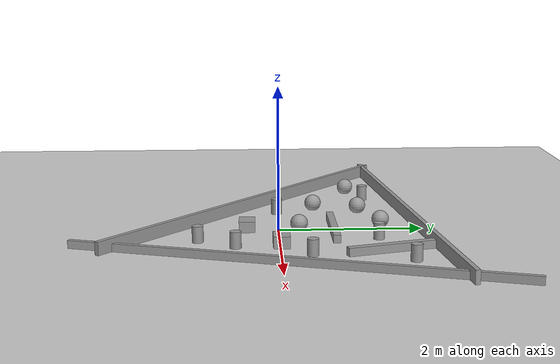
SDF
<sdf version="1.6">
 <world name="default">
  <light name="sun" type="directional">
   <pose>0 0 10 0 -0 0</pose>
   <diffuse>0.8 0.8 0.8 1</diffuse>
   <specular>0.2 0.2 0.2 1</specular>
   <attenuation>
    <range>1000</range>
    <constant>0.9</constant>
    <linear>0.01</linear>
    <quadratic>0.001</quadratic>
   </attenuation>
   <direction>-0.5 0.1 -0.9</direction>
  </light>
  <model name="ground_plane">
   <static>1</static>
   <link name="link">
    <collision name="collision">
     <geometry><plane><normal>0 0 1</normal><size>100 100</size></plane></geometry>
     <surface>
      <contact><collide_bitmask>65535</collide_bitmask></contact>
      <friction><ode><mu>100</mu><mu2>50</mu2></ode></friction>
     </surface>
    </collision>
    <visual name="visual">
     <cast_shadows>0</cast_shadows>
     <geometry><plane><normal>0 0 1</normal><size>100 100</size></plane></geometry>
     <material>
      <script><uri>file://media/materials/scripts/gazebo.material</uri><name>Gazebo/Grey</name></script>
     </material>
    </visual>
   </link>
  </model>
  <gravity>0 0 -9.8</gravity>
  <magnetic_field>6e-06 2.3e-05 -4.2e-05</magnetic_field>
  <atmosphere type="adiabatic"/>
  <physics name="default_physics" default="0" type="ode">
   <max_step_size>0.001</max_step_size>
   <real_time_factor>1</real_time_factor>
   <real_time_update_rate>1000</real_time_update_rate>
  </physics>
  <scene><ambient>0.4 0.4 0.4 1</ambient><background>0.7 0.7 0.7 1</background><shadows>1</shadows></scene>
  <audio><device>default</device></audio>
  <spherical_coordinates>
   <surface_model>EARTH_WGS84</surface_model>
   <latitude_deg>0</latitude_deg>
   <longitude_deg>0</longitude_deg>
   <elevation>0</elevation>
   <heading_deg>0</heading_deg>
  </spherical_coordinates>
  <model name="wall">
   <link name="link">
    <inertial>
     <mass>1</mass>
     <inertia>
      <ixx>0.166667</ixx>
      <ixy>0</ixy>
      <ixz>0</ixz>
      <iyy>0.166667</iyy>
      <iyz>0</iyz>
      <izz>0.166667</izz>
     </inertia>
    </inertial>
    <visual name="visual">
     <geometry><box><size>6.06185 0.064282 0.203764</size></box></geometry>
     <material>
      <script><name>Gazebo/Grey</name><uri>file://media/materials/scripts/gazebo.material</uri></script>
     </material>
    </visual>
    <collision name="collision">
     <geometry><box><size>6.06185 0.064282 0.203764</size></box></geometry>
     <surface>
      <friction>
       <ode><mu>1</mu><mu2>1</mu2><fdir1>0 0 0</fdir1><slip1>0</slip1><slip2>0</slip2></ode>
       <torsional>
        <coefficient>1</coefficient>
        <patch_radius>0</patch_radius>
        <surface_radius>0</surface_radius>
        <use_patch_radius>1</use_patch_radius>
        <ode><slip>0</slip></ode>
       </torsional>
      </friction>
      <bounce><restitution_coefficient>0</restitution_coefficient><threshold>1e+06</threshold></bounce>
      <contact>
       <collide_without_contact>0</collide_without_contact>
       <collide_without_contact_bitmask>1</collide_without_contact_bitmask>
       <collide_bitmask>1</collide_bitmask>
       <ode>
        <soft_cfm>0</soft_cfm>
        <soft_erp>0.2</soft_erp>
        <kp>1e+13</kp>
        <kd>1</kd>
        <max_vel>0.01</max_vel>
        <min_depth>0</min_depth>
       </ode>
       <bullet>
        <split_impulse>1</split_impulse>
        <split_impulse_penetration_threshold>-0.01</split_impulse_penetration_threshold>
        <soft_cfm>0</soft_cfm>
        <soft_erp>0.2</soft_erp>
        <kp>1e+13</kp>
        <kd>1</kd>
       </bullet>
      </contact>
     </surface>
    </collision>
   </link>
   <static>1</static>
   <pose>-1.23496 -0.362628 0.072252 0 0 -0.71804</pose>
  </model>
  <model name="wall_clone">
   <link name="link">
    <inertial>
     <mass>1</mass>
     <inertia>
      <ixx>0.166667</ixx>
      <ixy>0</ixy>
      <ixz>0</ixz>
      <iyy>0.166667</iyy>
      <iyz>0</iyz>
      <izz>0.166667</izz>
     </inertia>
    </inertial>
    <visual name="visual">
     <geometry><box><size>6.06185 0.064282 0.203764</size></box></geometry>
     <material>
      <script><name>Gazebo/Grey</name><uri>file://media/materials/scripts/gazebo.material</uri></script>
     </material>
    </visual>
    <collision name="collision">
     <geometry><box><size>6.06185 0.064282 0.203764</size></box></geometry>
     <surface>
      <friction>
       <ode><mu>1</mu><mu2>1</mu2><fdir1>0 0 0</fdir1><slip1>0</slip1><slip2>0</slip2></ode>
       <torsional>
        <coefficient>1</coefficient>
        <patch_radius>0</patch_radius>
        <surface_radius>0</surface_radius>
        <use_patch_radius>1</use_patch_radius>
        <ode><slip>0</slip></ode>
       </torsional>
      </friction>
      <bounce><restitution_coefficient>0</restitution_coefficient><threshold>1e+06</threshold></bounce>
      <contact>
       <collide_without_contact>0</collide_without_contact>
       <collide_without_contact_bitmask>1</collide_without_contact_bitmask>
       <collide_bitmask>1</collide_bitmask>
       <ode>
        <soft_cfm>0</soft_cfm>
        <soft_erp>0.2</soft_erp>
        <kp>1e+13</kp>
        <kd>1</kd>
        <max_vel>0.01</max_vel>
        <min_depth>0</min_depth>
       </ode>
       <bullet>
        <split_impulse>1</split_impulse>
        <split_impulse_penetration_threshold>-0.01</split_impulse_penetration_threshold>
        <soft_cfm>0</soft_cfm>
        <soft_erp>0.2</soft_erp>
        <kp>1e+13</kp>
        <kd>1</kd>
       </bullet>
      </contact>
     </surface>
    </collision>
   </link>
   <static>1</static>
   <pose>-0.566289 1.8851 0.072252 0 -0 0.115488</pose>
  </model>
  <model name="wall_0">
   <link name="link">
    <inertial>
     <mass>1</mass>
     <inertia>
      <ixx>0.166667</ixx>
      <ixy>0</ixy>
      <ixz>0</ixz>
      <iyy>0.166667</iyy>
      <iyz>0</iyz>
      <izz>0.166667</izz>
     </inertia>
    </inertial>
    <visual name="visual">
     <geometry><box><size>6.06185 0.064282 0.203764</size></box></geometry>
     <material>
      <script><name>Gazebo/Grey</name><uri>file://media/materials/scripts/gazebo.material</uri></script>
     </material>
    </visual>
    <collision name="collision">
     <geometry><box><size>6.06185 0.064282 0.203764</size></box></geometry>
     <surface>
      <friction>
       <ode><mu>1</mu><mu2>1</mu2><fdir1>0 0 0</fdir1><slip1>0</slip1><slip2>0</slip2></ode>
       <torsional>
        <coefficient>1</coefficient>
        <patch_radius>0</patch_radius>
        <surface_radius>0</surface_radius>
        <use_patch_radius>1</use_patch_radius>
        <ode><slip>0</slip></ode>
       </torsional>
      </friction>
      <bounce><restitution_coefficient>0</restitution_coefficient><threshold>1e+06</threshold></bounce>
      <contact>
       <collide_without_contact>0</collide_without_contact>
       <collide_without_contact_bitmask>1</collide_without_contact_bitmask>
       <collide_bitmask>1</collide_bitmask>
       <ode>
        <soft_cfm>0</soft_cfm>
        <soft_erp>0.2</soft_erp>
        <kp>1e+13</kp>
        <kd>1</kd>
        <max_vel>0.01</max_vel>
        <min_depth>0</min_depth>
       </ode>
       <bullet>
        <split_impulse>1</split_impulse>
        <split_impulse_penetration_threshold>-0.01</split_impulse_penetration_threshold>
        <soft_cfm>0</soft_cfm>
        <soft_erp>0.2</soft_erp>
        <kp>1e+13</kp>
        <kd>1</kd>
       </bullet>
      </contact>
     </surface>
    </collision>
   </link>
   <static>1</static>
   <pose>1.58347 0.124466 0 0 -0 1.26831</pose>
  </model>
  <model name="long_obstacle">
   <link name="link">
    <inertial>
     <mass>1</mass>
     <inertia>
      <ixx>0.166667</ixx>
      <ixy>0</ixy>
      <ixz>0</ixz>
      <iyy>0.166667</iyy>
      <iyz>0</iyz>
      <izz>0.166667</izz>
     </inertia>
    </inertial>
    <visual name="visual">
     <geometry><box><size>1.23514 0.097707 0.121659</size></box></geometry>
     <material>
      <script><name>Gazebo/Grey</name><uri>file://media/materials/scripts/gazebo.material</uri></script>
     </material>
    </visual>
    <collision name="collision">
     <geometry><box><size>1.23514 0.097707 0.121659</size></box></geometry>
     <surface>
      <friction>
       <ode><mu>1</mu><mu2>1</mu2><fdir1>0 0 0</fdir1><slip1>0</slip1><slip2>0</slip2></ode>
       <torsional>
        <coefficient>1</coefficient>
        <patch_radius>0</patch_radius>
        <surface_radius>0</surface_radius>
        <use_patch_radius>1</use_patch_radius>
        <ode><slip>0</slip></ode>
       </torsional>
      </friction>
      <bounce><restitution_coefficient>0</restitution_coefficient><threshold>1e+06</threshold></bounce>
      <contact>
       <collide_without_contact>0</collide_without_contact>
       <collide_without_contact_bitmask>1</collide_without_contact_bitmask>
       <collide_bitmask>1</collide_bitmask>
       <ode>
        <soft_cfm>0</soft_cfm>
        <soft_erp>0.2</soft_erp>
        <kp>1e+13</kp>
        <kd>1</kd>
        <max_vel>0.01</max_vel>
        <min_depth>0</min_depth>
       </ode>
       <bullet>
        <split_impulse>1</split_impulse>
        <split_impulse_penetration_threshold>-0.01</split_impulse_penetration_threshold>
        <soft_cfm>0</soft_cfm>
        <soft_erp>0.2</soft_erp>
        <kp>1e+13</kp>
        <kd>1</kd>
       </bullet>
      </contact>
     </surface>
    </collision>
   </link>
   <static>1</static>
   <pose>0.033085 0.760894 0.043606 0 -0 0</pose>
  </model>
  <model name="square_obstacle">
   <link name="link">
    <inertial>
     <mass>1</mass>
     <inertia>
      <ixx>0.166667</ixx>
      <ixy>0</ixy>
      <ixz>0</ixz>
      <iyy>0.166667</iyy>
      <iyz>0</iyz>
      <izz>0.166667</izz>
     </inertia>
    </inertial>
    <visual name="visual">
     <geometry><box><size>0.287479 0.224054 0.165392</size></box></geometry>
     <material>
      <script><name>Gazebo/Grey</name><uri>file://media/materials/scripts/gazebo.material</uri></script>
     </material>
    </visual>
    <collision name="collision">
     <geometry><box><size>0.287479 0.224054 0.165392</size></box></geometry>
     <surface>
      <friction>
       <ode><mu>1</mu><mu2>1</mu2><fdir1>0 0 0</fdir1><slip1>0</slip1><slip2>0</slip2></ode>
       <torsional>
        <coefficient>1</coefficient>
        <patch_radius>0</patch_radius>
        <surface_radius>0</surface_radius>
        <use_patch_radius>1</use_patch_radius>
        <ode><slip>0</slip></ode>
       </torsional>
      </friction>
      <bounce><restitution_coefficient>0</restitution_coefficient><threshold>1e+06</threshold></bounce>
      <contact>
       <collide_without_contact>0</collide_without_contact>
       <collide_without_contact_bitmask>1</collide_without_contact_bitmask>
       <collide_bitmask>1</collide_bitmask>
       <ode>
        <soft_cfm>0</soft_cfm>
        <soft_erp>0.2</soft_erp>
        <kp>1e+13</kp>
        <kd>1</kd>
        <max_vel>0.01</max_vel>
        <min_depth>0</min_depth>
       </ode>
       <bullet>
        <split_impulse>1</split_impulse>
        <split_impulse_penetration_threshold>-0.01</split_impulse_penetration_threshold>
        <soft_cfm>0</soft_cfm>
        <soft_erp>0.2</soft_erp>
        <kp>1e+13</kp>
        <kd>1</kd>
       </bullet>
      </contact>
     </surface>
    </collision>
   </link>
   <static>1</static>
   <pose>-0.062878 -0.432442 0.062909 0 -0 0</pose>
  </model>
  <model name="square_obstacle_0">
   <link name="link">
    <inertial>
     <mass>1</mass>
     <inertia>
      <ixx>0.166667</ixx>
      <ixy>0</ixy>
      <ixz>0</ixz>
      <iyy>0.166667</iyy>
      <iyz>0</iyz>
      <izz>0.166667</izz>
     </inertia>
    </inertial>
    <visual name="visual">
     <geometry><box><size>0.287479 0.224054 0.165392</size></box></geometry>
     <material>
      <script><name>Gazebo/Grey</name><uri>file://media/materials/scripts/gazebo.material</uri></script>
     </material>
    </visual>
    <collision name="collision">
     <geometry><box><size>0.287479 0.224054 0.165392</size></box></geometry>
     <surface>
      <friction>
       <ode><mu>1</mu><mu2>1</mu2><fdir1>0 0 0</fdir1><slip1>0</slip1><slip2>0</slip2></ode>
       <torsional>
        <coefficient>1</coefficient>
        <patch_radius>0</patch_radius>
        <surface_radius>0</surface_radius>
        <use_patch_radius>1</use_patch_radius>
        <ode><slip>0</slip></ode>
       </torsional>
      </friction>
      <bounce><restitution_coefficient>0</restitution_coefficient><threshold>1e+06</threshold></bounce>
      <contact>
       <collide_without_contact>0</collide_without_contact>
       <collide_without_contact_bitmask>1</collide_without_contact_bitmask>
       <collide_bitmask>1</collide_bitmask>
       <ode>
        <soft_cfm>0</soft_cfm>
        <soft_erp>0.2</soft_erp>
        <kp>1e+13</kp>
        <kd>1</kd>
        <max_vel>0.01</max_vel>
        <min_depth>0</min_depth>
       </ode>
       <bullet>
        <split_impulse>1</split_impulse>
        <split_impulse_penetration_threshold>-0.01</split_impulse_penetration_threshold>
        <soft_cfm>0</soft_cfm>
        <soft_erp>0.2</soft_erp>
        <kp>1e+13</kp>
        <kd>1</kd>
       </bullet>
      </contact>
     </surface>
    </collision>
   </link>
   <static>1</static>
   <pose>0.733165 0.017928 0.071905 0 -0 0</pose>
  </model>
  <model name="sphere_obstacles">
   <link name="link">
    <inertial>
     <mass>1</mass>
     <inertia><ixx>0.1</ixx><ixy>0</ixy><ixz>0</ixz><iyy>0.1</iyy><iyz>0</iyz><izz>0.1</izz></inertia>
    </inertial>
    <visual name="visual">
     <geometry><sphere><radius>0.121078</radius></sphere></geometry>
     <material>
      <script><name>Gazebo/Grey</name><uri>file://media/materials/scripts/gazebo.material</uri></script>
     </material>
    </visual>
    <collision name="collision">
     <geometry><sphere><radius>0.121078</radius></sphere></geometry>
     <surface>
      <friction>
       <ode><mu>1</mu><mu2>1</mu2><fdir1>0 0 0</fdir1><slip1>0</slip1><slip2>0</slip2></ode>
       <torsional>
        <coefficient>1</coefficient>
        <patch_radius>0</patch_radius>
        <surface_radius>0</surface_radius>
        <use_patch_radius>1</use_patch_radius>
        <ode><slip>0</slip></ode>
       </torsional>
      </friction>
      <bounce><restitution_coefficient>0</restitution_coefficient><threshold>1e+06</threshold></bounce>
      <contact>
       <collide_without_contact>0</collide_without_contact>
       <collide_without_contact_bitmask>1</collide_without_contact_bitmask>
       <collide_bitmask>1</collide_bitmask>
       <ode>
        <soft_cfm>0</soft_cfm>
        <soft_erp>0.2</soft_erp>
        <kp>1e+13</kp>
        <kd>1</kd>
        <max_vel>0.01</max_vel>
        <min_depth>0</min_depth>
       </ode>
       <bullet>
        <split_impulse>1</split_impulse>
        <split_impulse_penetration_threshold>-0.01</split_impulse_penetration_threshold>
        <soft_cfm>0</soft_cfm>
        <soft_erp>0.2</soft_erp>
        <kp>1e+13</kp>
        <kd>1</kd>
       </bullet>
      </contact>
     </surface>
    </collision>
   </link>
   <static>1</static>
   <pose>-1.17347 0.558292 0.095186 0 -0 0</pose>
  </model>
  <model name="long_obstacle_clone">
   <link name="link">
    <inertial>
     <mass>1</mass>
     <inertia>
      <ixx>0.166667</ixx>
      <ixy>0</ixy>
      <ixz>0</ixz>
      <iyy>0.166667</iyy>
      <iyz>0</iyz>
      <izz>0.166667</izz>
     </inertia>
    </inertial>
    <visual name="visual">
     <geometry><box><size>1.23514 0.097707 0.121659</size></box></geometry>
     <material>
      <script><name>Gazebo/Grey</name><uri>file://media/materials/scripts/gazebo.material</uri></script>
     </material>
    </visual>
    <collision name="collision">
     <geometry><box><size>1.23514 0.097707 0.121659</size></box></geometry>
     <surface>
      <friction>
       <ode><mu>1</mu><mu2>1</mu2><fdir1>0 0 0</fdir1><slip1>0</slip1><slip2>0</slip2></ode>
       <torsional>
        <coefficient>1</coefficient>
        <patch_radius>0</patch_radius>
        <surface_radius>0</surface_radius>
        <use_patch_radius>1</use_patch_radius>
        <ode><slip>0</slip></ode>
       </torsional>
      </friction>
      <bounce><restitution_coefficient>0</restitution_coefficient><threshold>1e+06</threshold></bounce>
      <contact>
       <collide_without_contact>0</collide_without_contact>
       <collide_without_contact_bitmask>1</collide_without_contact_bitmask>
       <collide_bitmask>1</collide_bitmask>
       <ode>
        <soft_cfm>0</soft_cfm>
        <soft_erp>0.2</soft_erp>
        <kp>1e+13</kp>
        <kd>1</kd>
        <max_vel>0.01</max_vel>
        <min_depth>0</min_depth>
       </ode>
       <bullet>
        <split_impulse>1</split_impulse>
        <split_impulse_penetration_threshold>-0.01</split_impulse_penetration_threshold>
        <soft_cfm>0</soft_cfm>
        <soft_erp>0.2</soft_erp>
        <kp>1e+13</kp>
        <kd>1</kd>
       </bullet>
      </contact>
     </surface>
    </collision>
   </link>
   <static>1</static>
   <pose>1.05931 1.43983 0.043606 0 0 -1.29558</pose>
  </model>
  <model name="sphere_obstacles_clone">
   <link name="link">
    <inertial>
     <mass>1</mass>
     <inertia><ixx>0.1</ixx><ixy>0</ixy><ixz>0</ixz><iyy>0.1</iyy><iyz>0</iyz><izz>0.1</izz></inertia>
    </inertial>
    <visual name="visual">
     <geometry><sphere><radius>0.121078</radius></sphere></geometry>
     <material>
      <script><name>Gazebo/Grey</name><uri>file://media/materials/scripts/gazebo.material</uri></script>
     </material>
    </visual>
    <collision name="collision">
     <geometry><sphere><radius>0.121078</radius></sphere></geometry>
     <surface>
      <friction>
       <ode><mu>1</mu><mu2>1</mu2><fdir1>0 0 0</fdir1><slip1>0</slip1><slip2>0</slip2></ode>
       <torsional>
        <coefficient>1</coefficient>
        <patch_radius>0</patch_radius>
        <surface_radius>0</surface_radius>
        <use_patch_radius>1</use_patch_radius>
        <ode><slip>0</slip></ode>
       </torsional>
      </friction>
      <bounce><restitution_coefficient>0</restitution_coefficient><threshold>1e+06</threshold></bounce>
      <contact>
       <collide_without_contact>0</collide_without_contact>
       <collide_without_contact_bitmask>1</collide_without_contact_bitmask>
       <collide_bitmask>1</collide_bitmask>
       <ode>
        <soft_cfm>0</soft_cfm>
        <soft_erp>0.2</soft_erp>
        <kp>1e+13</kp>
        <kd>1</kd>
        <max_vel>0.01</max_vel>
        <min_depth>0</min_depth>
       </ode>
       <bullet>
        <split_impulse>1</split_impulse>
        <split_impulse_penetration_threshold>-0.01</split_impulse_penetration_threshold>
        <soft_cfm>0</soft_cfm>
        <soft_erp>0.2</soft_erp>
        <kp>1e+13</kp>
        <kd>1</kd>
       </bullet>
      </contact>
     </surface>
    </collision>
   </link>
   <static>1</static>
   <pose>-0.19408 1.44558 0.095186 0 -0 0</pose>
  </model>
  <model name="cylinder_obstacles">
   <link name="link">
    <inertial>
     <mass>1</mass>
     <inertia><ixx>0.145833</ixx><ixy>0</ixy><ixz>0</ixz><iyy>0.145833</iyy><iyz>0</iyz><izz>0.125</izz></inertia>
    </inertial>
    <visual name="visual">
     <geometry><cylinder><radius>0.076548</radius><length>0.26008</length></cylinder></geometry>
     <material>
      <script><name>Gazebo/Grey</name><uri>file://media/materials/scripts/gazebo.material</uri></script>
     </material>
    </visual>
    <collision name="collision">
     <geometry><cylinder><radius>0.076548</radius><length>0.26008</length></cylinder></geometry>
     <surface>
      <friction>
       <ode><mu>1</mu><mu2>1</mu2><fdir1>0 0 0</fdir1><slip1>0</slip1><slip2>0</slip2></ode>
       <torsional>
        <coefficient>1</coefficient>
        <patch_radius>0</patch_radius>
        <surface_radius>0</surface_radius>
        <use_patch_radius>1</use_patch_radius>
        <ode><slip>0</slip></ode>
       </torsional>
      </friction>
      <bounce><restitution_coefficient>0</restitution_coefficient><threshold>1e+06</threshold></bounce>
      <contact>
       <collide_without_contact>0</collide_without_contact>
       <collide_without_contact_bitmask>1</collide_without_contact_bitmask>
       <collide_bitmask>1</collide_bitmask>
       <ode>
        <soft_cfm>0</soft_cfm>
        <soft_erp>0.2</soft_erp>
        <kp>1e+13</kp>
        <kd>1</kd>
        <max_vel>0.01</max_vel>
        <min_depth>0</min_depth>
       </ode>
       <bullet>
        <split_impulse>1</split_impulse>
        <split_impulse_penetration_threshold>-0.01</split_impulse_penetration_threshold>
        <soft_cfm>0</soft_cfm>
        <soft_erp>0.2</soft_erp>
        <kp>1e+13</kp>
        <kd>1</kd>
       </bullet>
      </contact>
     </surface>
    </collision>
   </link>
   <static>1</static>
   <pose>0.498862 -1.09259 0.087263 0 -0 0</pose>
  </model>
  <model name="cylinder_obstacles_clone">
   <link name="link">
    <inertial>
     <mass>1</mass>
     <inertia><ixx>0.145833</ixx><ixy>0</ixy><ixz>0</ixz><iyy>0.145833</iyy><iyz>0</iyz><izz>0.125</izz></inertia>
    </inertial>
    <visual name="visual">
     <geometry><cylinder><radius>0.076548</radius><length>0.26008</length></cylinder></geometry>
     <material>
      <script><name>Gazebo/Grey</name><uri>file://media/materials/scripts/gazebo.material</uri></script>
     </material>
    </visual>
    <collision name="collision">
     <geometry><cylinder><radius>0.076548</radius><length>0.26008</length></cylinder></geometry>
     <surface>
      <friction>
       <ode><mu>1</mu><mu2>1</mu2><fdir1>0 0 0</fdir1><slip1>0</slip1><slip2>0</slip2></ode>
       <torsional>
        <coefficient>1</coefficient>
        <patch_radius>0</patch_radius>
        <surface_radius>0</surface_radius>
        <use_patch_radius>1</use_patch_radius>
        <ode><slip>0</slip></ode>
       </torsional>
      </friction>
      <bounce><restitution_coefficient>0</restitution_coefficient><threshold>1e+06</threshold></bounce>
      <contact>
       <collide_without_contact>0</collide_without_contact>
       <collide_without_contact_bitmask>1</collide_without_contact_bitmask>
       <collide_bitmask>1</collide_bitmask>
       <ode>
        <soft_cfm>0</soft_cfm>
        <soft_erp>0.2</soft_erp>
        <kp>1e+13</kp>
        <kd>1</kd>
        <max_vel>0.01</max_vel>
        <min_depth>0</min_depth>
       </ode>
       <bullet>
        <split_impulse>1</split_impulse>
        <split_impulse_penetration_threshold>-0.01</split_impulse_penetration_threshold>
        <soft_cfm>0</soft_cfm>
        <soft_erp>0.2</soft_erp>
        <kp>1e+13</kp>
        <kd>1</kd>
       </bullet>
      </contact>
     </surface>
    </collision>
   </link>
   <static>1</static>
   <pose>1.47654 1.68341 0.087263 0 -0 0</pose>
  </model>
  <model name="cylinder_obstacles_clone_0">
   <link name="link">
    <inertial>
     <mass>1</mass>
     <inertia><ixx>0.145833</ixx><ixy>0</ixy><ixz>0</ixz><iyy>0.145833</iyy><iyz>0</iyz><izz>0.125</izz></inertia>
    </inertial>
    <visual name="visual">
     <geometry><cylinder><radius>0.076548</radius><length>0.26008</length></cylinder></geometry>
     <material>
      <script><name>Gazebo/Grey</name><uri>file://media/materials/scripts/gazebo.material</uri></script>
     </material>
    </visual>
    <collision name="collision">
     <geometry><cylinder><radius>0.076548</radius><length>0.26008</length></cylinder></geometry>
     <surface>
      <friction>
       <ode><mu>1</mu><mu2>1</mu2><fdir1>0 0 0</fdir1><slip1>0</slip1><slip2>0</slip2></ode>
       <torsional>
        <coefficient>1</coefficient>
        <patch_radius>0</patch_radius>
        <surface_radius>0</surface_radius>
        <use_patch_radius>1</use_patch_radius>
        <ode><slip>0</slip></ode>
       </torsional>
      </friction>
      <bounce><restitution_coefficient>0</restitution_coefficient><threshold>1e+06</threshold></bounce>
      <contact>
       <collide_without_contact>0</collide_without_contact>
       <collide_without_contact_bitmask>1</collide_without_contact_bitmask>
       <collide_bitmask>1</collide_bitmask>
       <ode>
        <soft_cfm>0</soft_cfm>
        <soft_erp>0.2</soft_erp>
        <kp>1e+13</kp>
        <kd>1</kd>
        <max_vel>0.01</max_vel>
        <min_depth>0</min_depth>
       </ode>
       <bullet>
        <split_impulse>1</split_impulse>
        <split_impulse_penetration_threshold>-0.01</split_impulse_penetration_threshold>
        <soft_cfm>0</soft_cfm>
        <soft_erp>0.2</soft_erp>
        <kp>1e+13</kp>
        <kd>1</kd>
       </bullet>
      </contact>
     </surface>
    </collision>
   </link>
   <static>1</static>
   <pose>-1.75025 1.36342 0.087263 0 -0 0</pose>
  </model>
  <model name="cylinder_obstacles_clone_1">
   <link name="link">
    <inertial>
     <mass>1</mass>
     <inertia><ixx>0.145833</ixx><ixy>0</ixy><ixz>0</ixz><iyy>0.145833</iyy><iyz>0</iyz><izz>0.125</izz></inertia>
    </inertial>
    <visual name="visual">
     <geometry><cylinder><radius>0.076548</radius><length>0.26008</length></cylinder></geometry>
     <material>
      <script><name>Gazebo/Grey</name><uri>file://media/materials/scripts/gazebo.material</uri></script>
     </material>
    </visual>
    <collision name="collision">
     <geometry><cylinder><radius>0.076548</radius><length>0.26008</length></cylinder></geometry>
     <surface>
      <friction>
       <ode><mu>1</mu><mu2>1</mu2><fdir1>0 0 0</fdir1><slip1>0</slip1><slip2>0</slip2></ode>
       <torsional>
        <coefficient>1</coefficient>
        <patch_radius>0</patch_radius>
        <surface_radius>0</surface_radius>
        <use_patch_radius>1</use_patch_radius>
        <ode><slip>0</slip></ode>
       </torsional>
      </friction>
      <bounce><restitution_coefficient>0</restitution_coefficient><threshold>1e+06</threshold></bounce>
      <contact>
       <collide_without_contact>0</collide_without_contact>
       <collide_without_contact_bitmask>1</collide_without_contact_bitmask>
       <collide_bitmask>1</collide_bitmask>
       <ode>
        <soft_cfm>0</soft_cfm>
        <soft_erp>0.2</soft_erp>
        <kp>1e+13</kp>
        <kd>1</kd>
        <max_vel>0.01</max_vel>
        <min_depth>0</min_depth>
       </ode>
       <bullet>
        <split_impulse>1</split_impulse>
        <split_impulse_penetration_threshold>-0.01</split_impulse_penetration_threshold>
        <soft_cfm>0</soft_cfm>
        <soft_erp>0.2</soft_erp>
        <kp>1e+13</kp>
        <kd>1</kd>
       </bullet>
      </contact>
     </surface>
    </collision>
   </link>
   <static>1</static>
   <pose>-0.951205 0.009099 0.087263 0 -0 0</pose>
  </model>
  <model name="cylinder_obstacles_clone_2">
   <link name="link">
    <inertial>
     <mass>1</mass>
     <inertia><ixx>0.145833</ixx><ixy>0</ixy><ixz>0</ixz><iyy>0.145833</iyy><iyz>0</iyz><izz>0.125</izz></inertia>
    </inertial>
    <visual name="visual">
     <geometry><cylinder><radius>0.076548</radius><length>0.26008</length></cylinder></geometry>
     <material>
      <script><name>Gazebo/Grey</name><uri>file://media/materials/scripts/gazebo.material</uri></script>
     </material>
    </visual>
    <collision name="collision">
     <geometry><cylinder><radius>0.076548</radius><length>0.26008</length></cylinder></geometry>
     <surface>
      <friction>
       <ode><mu>1</mu><mu2>1</mu2><fdir1>0 0 0</fdir1><slip1>0</slip1><slip2>0</slip2></ode>
       <torsional>
        <coefficient>1</coefficient>
        <patch_radius>0</patch_radius>
        <surface_radius>0</surface_radius>
        <use_patch_radius>1</use_patch_radius>
        <ode><slip>0</slip></ode>
       </torsional>
      </friction>
      <bounce><restitution_coefficient>0</restitution_coefficient><threshold>1e+06</threshold></bounce>
      <contact>
       <collide_without_contact>0</collide_without_contact>
       <collide_without_contact_bitmask>1</collide_without_contact_bitmask>
       <collide_bitmask>1</collide_bitmask>
       <ode>
        <soft_cfm>0</soft_cfm>
        <soft_erp>0.2</soft_erp>
        <kp>1e+13</kp>
        <kd>1</kd>
        <max_vel>0.01</max_vel>
        <min_depth>0</min_depth>
       </ode>
       <bullet>
        <split_impulse>1</split_impulse>
        <split_impulse_penetration_threshold>-0.01</split_impulse_penetration_threshold>
        <soft_cfm>0</soft_cfm>
        <soft_erp>0.2</soft_erp>
        <kp>1e+13</kp>
        <kd>1</kd>
       </bullet>
      </contact>
     </surface>
    </collision>
   </link>
   <static>1</static>
   <pose>0.795642 -0.588364 0.087263 0 -0 0</pose>
  </model>
  <model name="cylinder_obstacles_clone_3">
   <link name="link">
    <inertial>
     <mass>1</mass>
     <inertia><ixx>0.145833</ixx><ixy>0</ixy><ixz>0</ixz><iyy>0.145833</iyy><iyz>0</iyz><izz>0.125</izz></inertia>
    </inertial>
    <visual name="visual">
     <geometry><cylinder><radius>0.076548</radius><length>0.26008</length></cylinder></geometry>
     <material>
      <script><name>Gazebo/Grey</name><uri>file://media/materials/scripts/gazebo.material</uri></script>
     </material>
    </visual>
    <collision name="collision">
     <geometry><cylinder><radius>0.076548</radius><length>0.26008</length></cylinder></geometry>
     <surface>
      <friction>
       <ode><mu>1</mu><mu2>1</mu2><fdir1>0 0 0</fdir1><slip1>0</slip1><slip2>0</slip2></ode>
       <torsional>
        <coefficient>1</coefficient>
        <patch_radius>0</patch_radius>
        <surface_radius>0</surface_radius>
        <use_patch_radius>1</use_patch_radius>
        <ode><slip>0</slip></ode>
       </torsional>
      </friction>
      <bounce><restitution_coefficient>0</restitution_coefficient><threshold>1e+06</threshold></bounce>
      <contact>
       <collide_without_contact>0</collide_without_contact>
       <collide_without_contact_bitmask>1</collide_without_contact_bitmask>
       <collide_bitmask>1</collide_bitmask>
       <ode>
        <soft_cfm>0</soft_cfm>
        <soft_erp>0.2</soft_erp>
        <kp>1e+13</kp>
        <kd>1</kd>
        <max_vel>0.01</max_vel>
        <min_depth>0</min_depth>
       </ode>
       <bullet>
        <split_impulse>1</split_impulse>
        <split_impulse_penetration_threshold>-0.01</split_impulse_penetration_threshold>
        <soft_cfm>0</soft_cfm>
        <soft_erp>0.2</soft_erp>
        <kp>1e+13</kp>
        <kd>1</kd>
       </bullet>
      </contact>
     </surface>
    </collision>
   </link>
   <static>1</static>
   <pose>0.455192 1.34436 0.087263 0 -0 0</pose>
  </model>
  <model name="sphere_obstacles_clone_clone">
   <link name="link">
    <inertial>
     <mass>1</mass>
     <inertia><ixx>0.1</ixx><ixy>0</ixy><ixz>0</ixz><iyy>0.1</iyy><iyz>0</iyz><izz>0.1</izz></inertia>
    </inertial>
    <visual name="visual">
     <geometry><sphere><radius>0.121078</radius></sphere></geometry>
     <material>
      <script><name>Gazebo/Grey</name><uri>file://media/materials/scripts/gazebo.material</uri></script>
     </material>
    </visual>
    <collision name="collision">
     <geometry><sphere><radius>0.121078</radius></sphere></geometry>
     <surface>
      <friction>
       <ode><mu>1</mu><mu2>1</mu2><fdir1>0 0 0</fdir1><slip1>0</slip1><slip2>0</slip2></ode>
       <torsional>
        <coefficient>1</coefficient>
        <patch_radius>0</patch_radius>
        <surface_radius>0</surface_radius>
        <use_patch_radius>1</use_patch_radius>
        <ode><slip>0</slip></ode>
       </torsional>
      </friction>
      <bounce><restitution_coefficient>0</restitution_coefficient><threshold>1e+06</threshold></bounce>
      <contact>
       <collide_without_contact>0</collide_without_contact>
       <collide_without_contact_bitmask>1</collide_without_contact_bitmask>
       <collide_bitmask>1</collide_bitmask>
       <ode>
        <soft_cfm>0</soft_cfm>
        <soft_erp>0.2</soft_erp>
        <kp>1e+13</kp>
        <kd>1</kd>
        <max_vel>0.01</max_vel>
        <min_depth>0</min_depth>
       </ode>
       <bullet>
        <split_impulse>1</split_impulse>
        <split_impulse_penetration_threshold>-0.01</split_impulse_penetration_threshold>
        <soft_cfm>0</soft_cfm>
        <soft_erp>0.2</soft_erp>
        <kp>1e+13</kp>
        <kd>1</kd>
       </bullet>
      </contact>
     </surface>
    </collision>
   </link>
   <static>1</static>
   <pose>-2.20949 1.14322 0.095186 0 -0 0</pose>
  </model>
  <model name="sphere_obstacles_clone_clone_0">
   <link name="link">
    <inertial>
     <mass>1</mass>
     <inertia><ixx>0.1</ixx><ixy>0</ixy><ixz>0</ixz><iyy>0.1</iyy><iyz>0</iyz><izz>0.1</izz></inertia>
    </inertial>
    <visual name="visual">
     <geometry><sphere><radius>0.121078</radius></sphere></geometry>
     <material>
      <script><name>Gazebo/Grey</name><uri>file://media/materials/scripts/gazebo.material</uri></script>
     </material>
    </visual>
    <collision name="collision">
     <geometry><sphere><radius>0.121078</radius></sphere></geometry>
     <surface>
      <friction>
       <ode><mu>1</mu><mu2>1</mu2><fdir1>0 0 0</fdir1><slip1>0</slip1><slip2>0</slip2></ode>
       <torsional>
        <coefficient>1</coefficient>
        <patch_radius>0</patch_radius>
        <surface_radius>0</surface_radius>
        <use_patch_radius>1</use_patch_radius>
        <ode><slip>0</slip></ode>
       </torsional>
      </friction>
      <bounce><restitution_coefficient>0</restitution_coefficient><threshold>1e+06</threshold></bounce>
      <contact>
       <collide_without_contact>0</collide_without_contact>
       <collide_without_contact_bitmask>1</collide_without_contact_bitmask>
       <collide_bitmask>1</collide_bitmask>
       <ode>
        <soft_cfm>0</soft_cfm>
        <soft_erp>0.2</soft_erp>
        <kp>1e+13</kp>
        <kd>1</kd>
        <max_vel>0.01</max_vel>
        <min_depth>0</min_depth>
       </ode>
       <bullet>
        <split_impulse>1</split_impulse>
        <split_impulse_penetration_threshold>-0.01</split_impulse_penetration_threshold>
        <soft_cfm>0</soft_cfm>
        <soft_erp>0.2</soft_erp>
        <kp>1e+13</kp>
        <kd>1</kd>
       </bullet>
      </contact>
     </surface>
    </collision>
   </link>
   <static>1</static>
   <pose>-0.031127 0.290883 0.095186 0 -0 0</pose>
  </model>
  <model name="sphere_obstacles_clone_clone_1">
   <link name="link">
    <inertial>
     <mass>1</mass>
     <inertia><ixx>0.1</ixx><ixy>0</ixy><ixz>0</ixz><iyy>0.1</iyy><iyz>0</iyz><izz>0.1</izz></inertia>
    </inertial>
    <visual name="visual">
     <geometry><sphere><radius>0.121078</radius></sphere></geometry>
     <material>
      <script><name>Gazebo/Grey</name><uri>file://media/materials/scripts/gazebo.material</uri></script>
     </material>
    </visual>
    <collision name="collision">
     <geometry><sphere><radius>0.121078</radius></sphere></geometry>
     <surface>
      <friction>
       <ode><mu>1</mu><mu2>1</mu2><fdir1>0 0 0</fdir1><slip1>0</slip1><slip2>0</slip2></ode>
       <torsional>
        <coefficient>1</coefficient>
        <patch_radius>0</patch_radius>
        <surface_radius>0</surface_radius>
        <use_patch_radius>1</use_patch_radius>
        <ode><slip>0</slip></ode>
       </torsional>
      </friction>
      <bounce><restitution_coefficient>0</restitution_coefficient><threshold>1e+06</threshold></bounce>
      <contact>
       <collide_without_contact>0</collide_without_contact>
       <collide_without_contact_bitmask>1</collide_without_contact_bitmask>
       <collide_bitmask>1</collide_bitmask>
       <ode>
        <soft_cfm>0</soft_cfm>
        <soft_erp>0.2</soft_erp>
        <kp>1e+13</kp>
        <kd>1</kd>
        <max_vel>0.01</max_vel>
        <min_depth>0</min_depth>
       </ode>
       <bullet>
        <split_impulse>1</split_impulse>
        <split_impulse_penetration_threshold>-0.01</split_impulse_penetration_threshold>
        <soft_cfm>0</soft_cfm>
        <soft_erp>0.2</soft_erp>
        <kp>1e+13</kp>
        <kd>1</kd>
       </bullet>
      </contact>
     </surface>
    </collision>
   </link>
   <static>1</static>
   <pose>-0.989735 1.20715 0.095186 0 -0 0</pose>
  </model>
  <model name="cylinder_obstacles_clone_0_clone">
   <link name="link">
    <inertial>
     <mass>1</mass>
     <inertia><ixx>0.145833</ixx><ixy>0</ixy><ixz>0</ixz><iyy>0.145833</iyy><iyz>0</iyz><izz>0.125</izz></inertia>
    </inertial>
    <visual name="visual">
     <geometry><cylinder><radius>0.076548</radius><length>0.26008</length></cylinder></geometry>
     <material>
      <script><name>Gazebo/Grey</name><uri>file://media/materials/scripts/gazebo.material</uri></script>
     </material>
    </visual>
    <collision name="collision">
     <geometry><cylinder><radius>0.076548</radius><length>0.26008</length></cylinder></geometry>
     <surface>
      <friction>
       <ode><mu>1</mu><mu2>1</mu2><fdir1>0 0 0</fdir1><slip1>0</slip1><slip2>0</slip2></ode>
       <torsional>
        <coefficient>1</coefficient>
        <patch_radius>0</patch_radius>
        <surface_radius>0</surface_radius>
        <use_patch_radius>1</use_patch_radius>
        <ode><slip>0</slip></ode>
       </torsional>
      </friction>
      <bounce><restitution_coefficient>0</restitution_coefficient><threshold>1e+06</threshold></bounce>
      <contact>
       <collide_without_contact>0</collide_without_contact>
       <collide_without_contact_bitmask>1</collide_without_contact_bitmask>
       <collide_bitmask>1</collide_bitmask>
       <ode>
        <soft_cfm>0</soft_cfm>
        <soft_erp>0.2</soft_erp>
        <kp>1e+13</kp>
        <kd>1</kd>
        <max_vel>0.01</max_vel>
        <min_depth>0</min_depth>
       </ode>
       <bullet>
        <split_impulse>1</split_impulse>
        <split_impulse_penetration_threshold>-0.01</split_impulse_penetration_threshold>
        <soft_cfm>0</soft_cfm>
        <soft_erp>0.2</soft_erp>
        <kp>1e+13</kp>
        <kd>1</kd>
       </bullet>
      </contact>
     </surface>
    </collision>
   </link>
   <static>1</static>
   <pose>1.17815 0.401542 0.087263 0 -0 0</pose>
  </model>
 </world>
</sdf>
